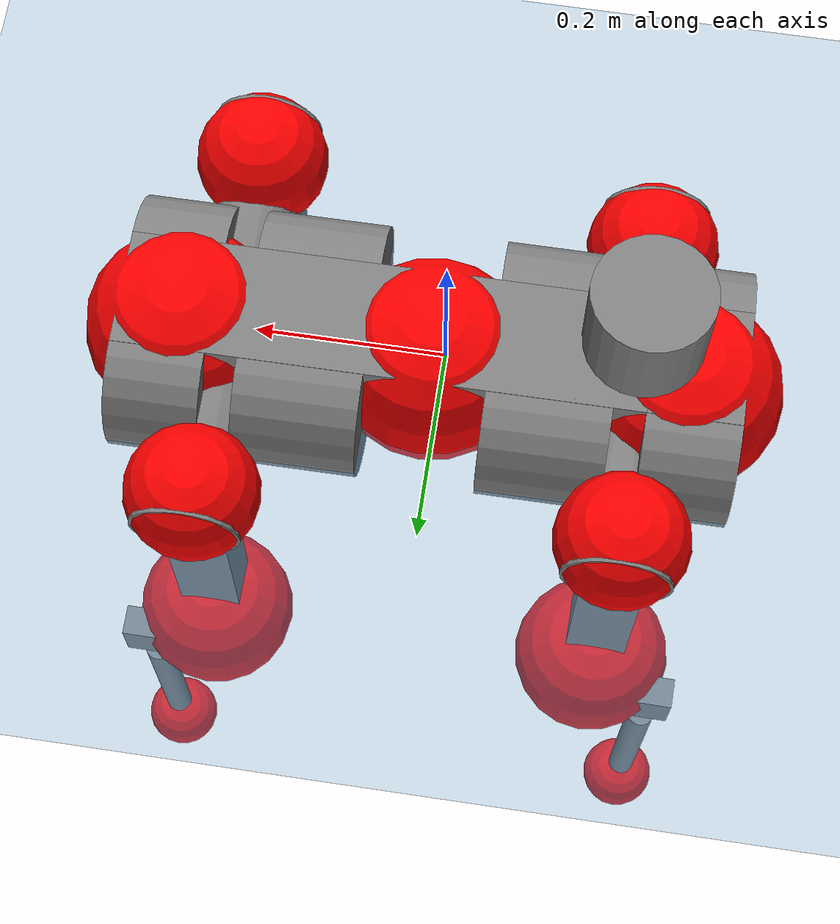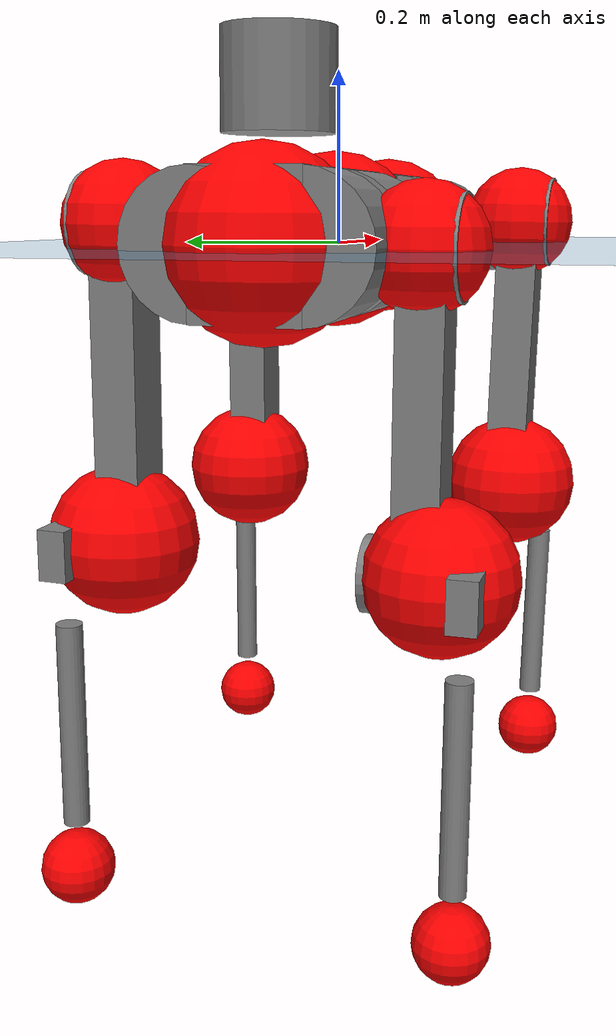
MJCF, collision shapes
<mujoco model="anymal_c">
  <compiler angle="radian" assetdir="assets" balanceinertia="true" inertiafromgeom="false"/>

  <option timestep="0.005" density="1.2" viscosity="2e-05"/>

  <size nkey="1"/>

  <visual>
    <quality shadowsize="8192"/>
    <map shadowclip="0.5"/>
  </visual>

  <default>
    <default class="/">
      <material specular="0" shininess="0.25"/>
      <geom contype="0" conaffinity="0" group="1" solref="-1000 -80"/>
      <site size="0.01 0.005 0.005" group="5"/>
      <general forcelimited="true" forcerange="-80 80" biastype="affine" gainprm="80" biasprm="0 -80 -2"/>
      <default class="anymal_c">
        <joint armature="0.01" damping="0.01" frictionloss="0.1"/>
        <default class="visual">
          <geom type="mesh" group="2"/>
          <default class="visual_zflip"/>
        </default>
        <default class="collision">
          <geom type="cylinder" group="3"/>
          <default class="foot">
            <geom size="0.03 0 0" type="sphere" condim="6" priority="1" friction="0.8 0.02 0.01" solimp="0.015 1 0.03"/>
          </default>
        </default>
      </default>
      <default class="reward_collision_sphere">
        <geom group="5" rgba="1 0 0 1"/>
      </default>
    </default>
  </default>

  <asset>
    <texture type="skybox" colorspace="auto" name="//unnamed_texture_0" builtin="gradient" rgb1="0.95 0.95 0.95" rgb2="0.95 0.95 0.95" width="100" height="600"/>
    <texture type="2d" colorspace="auto" name="texplane" builtin="checker" rgb1="0.345 0.575 0.748" rgb2="0.345 0.575 0.748" markrgb="1 1 1" width="512" height="512"/>
    <texture type="2d" colorspace="linear" name="base" file="base.png"/>
    <texture type="2d" colorspace="linear" name="top_shell" file="top_shell.png"/>
    <texture type="2d" colorspace="linear" name="bottom_shell" file="bottom_shell.png"/>
    <texture type="2d" colorspace="linear" name="remote" file="remote.png"/>
    <texture type="2d" colorspace="linear" name="hatch" file="hatch.png"/>
    <texture type="2d" colorspace="linear" name="handle" file="handle.png"/>
    <texture type="2d" colorspace="linear" name="face" file="face.png"/>
    <texture type="2d" colorspace="linear" name="battery" file="battery.png"/>
    <texture type="2d" colorspace="linear" name="lidar_cage" file="lidar_cage.png"/>
    <texture type="2d" colorspace="linear" name="depth_camera" file="depth_camera.png"/>
    <texture type="2d" colorspace="linear" name="wide_angle_camera" file="wide_angle_camera.png"/>
    <texture type="2d" colorspace="linear" name="lidar" file="lidar.png"/>
    <texture type="2d" colorspace="linear" name="drive" file="drive.png"/>
    <texture type="2d" colorspace="linear" name="hip_l" file="hip_l.png"/>
    <texture type="2d" colorspace="linear" name="shank_l" file="shank_l.png"/>
    <texture type="2d" colorspace="linear" name="foot" file="foot.png"/>
    <texture type="2d" colorspace="linear" name="thigh" file="thigh.png"/>
    <texture type="2d" colorspace="linear" name="shank_r" file="shank_r.png"/>
    <texture type="2d" colorspace="linear" name="hip_r" file="hip_r.png"/>
    <material name="MatPlane" class="/" texture="texplane" texuniform="true" texrepeat="2 2" specular="0.9" shininess="0.5"/>
    <material name="black_plastic" class="/" rgba="0.007 0.007 0.007 1"/>
    <material name="green" class="/" rgba="0.052 0.178 0.033 1"/>
    <material name="red" class="/" rgba="0.178 0.006 0.005 1"/>
    <material name="yellow" class="/" rgba="0.178 0.119 0.006 1"/>
    <material name="lwl" class="/" rgba="0.8 0.8 0.8 1"/>
    <material name="base" class="/" texture="base"/>
    <material name="top_shell" class="/" texture="top_shell"/>
    <material name="bottom_shell" class="/" texture="bottom_shell"/>
    <material name="hip_l" class="/" texture="hip_l"/>
    <material name="thigh" class="/" texture="thigh"/>
    <material name="shank_l" class="/" texture="shank_l"/>
    <material name="foot" class="/" texture="foot"/>
    <material name="hip_r" class="/" texture="hip_r"/>
    <material name="shank" class="/" texture="shank_r"/>
    <material name="hatch" class="/" texture="hatch"/>
    <material name="remote" class="/" texture="remote"/>
    <material name="handle" class="/" texture="handle"/>
    <material name="face" class="/" texture="face"/>
    <material name="depth_camera" class="/" texture="depth_camera"/>
    <material name="wide_angle_camera" class="/" texture="wide_angle_camera"/>
    <material name="battery" class="/" texture="battery"/>
    <material name="lidar_cage" class="/" texture="lidar_cage"/>
    <material name="lidar" class="/" texture="lidar"/>
    <material name="drive" class="/" texture="drive"/>
    <mesh name="base_0" class="/" file="base_0.obj"/>
    <mesh name="base_1" class="/" file="base_1.obj"/>
    <mesh name="base_2" class="/" file="base_2.obj"/>
    <mesh name="base_3" class="/" file="base_3.obj"/>
    <mesh name="base_4" class="/" file="base_4.obj"/>
    <mesh name="base_5" class="/" file="base_5.obj"/>
    <mesh name="top_shell" class="/" file="top_shell.obj"/>
    <mesh name="bottom_shell" class="/" file="bottom_shell.obj"/>
    <mesh name="remote" class="/" file="remote.obj"/>
    <mesh name="handle" class="/" file="handle.obj"/>
    <mesh name="face" class="/" file="face.obj"/>
    <mesh name="wide_angle_camera" class="/" file="wide_angle_camera.obj"/>
    <mesh name="depth_camera" class="/" file="depth_camera.obj"/>
    <mesh name="battery" class="/" file="battery.obj"/>
    <mesh name="lidar_cage" class="/" file="lidar_cage.obj"/>
    <mesh name="lidar" class="/" file="lidar.obj"/>
    <mesh name="drive" class="/" file="drive.obj"/>
    <mesh name="hip_l" class="/" file="hip_l.obj"/>
    <mesh name="thigh" class="/" file="thigh.obj"/>
    <mesh name="shank_l" class="/" file="shank_l.obj"/>
    <mesh name="foot" class="/" file="foot.obj"/>
    <mesh name="hip_r" class="/" file="hip_r.obj"/>
    <mesh name="hatch" class="/" file="hatch.obj"/>
    <mesh name="shank_r" class="/" file="shank_r.obj"/>
  </asset>

  <worldbody>
    <geom name="floor" class="/" size="100 100 0.125" type="plane" group="0" material="MatPlane"/>
    <light name="toplight_shadow" class="/" pos="0 0 5" dir="0.0990148 0.0990148 -0.990148" type="directional" ambient="0.04 0.04 0.04" diffuse="0.55 0.55 0.55" specular="0.12 0.12 0.12"/>
    <light name="toplight_fill" class="/" pos="0 0 5" dir="0.0990148 0.0990148 -0.990148" type="directional" castshadow="false" ambient="0.04 0.04 0.04" diffuse="0.3 0.3 0.3" specular="0.08 0.08 0.08"/>
    <body name="trunk" childclass="anymal_c" pos="0.0119453 0.00777195 0.00390849" quat="0.999989 0.00447619 -0.000302516 0.00126492">
      <inertial pos="0.0140624 -0.000716924 0.0609495" quat="0.500886 0.484716 0.503254 0.510782" mass="12.2361" diaginertia="0.0404915 0.221447 0.547901"/>
      <joint name="//unnamed_joint_0" type="free" armature="0" damping="0" frictionloss="0"/>
      <geom name="//unnamed_geom_1" class="visual" material="green" mesh="base_0"/>
      <geom name="//unnamed_geom_2" class="visual" material="yellow" mesh="base_1"/>
      <geom name="//unnamed_geom_3" class="visual" material="red" mesh="base_2"/>
      <geom name="//unnamed_geom_4" class="visual" material="black_plastic" mesh="base_3"/>
      <geom name="//unnamed_geom_5" class="visual" material="lwl" mesh="base_4"/>
      <geom name="//unnamed_geom_6" class="visual" material="base" mesh="base_5"/>
      <geom name="trunk_1" class="collision" size="0.254659 0.0614694 0.079032" type="box"/>
      <geom name="trunk_2" class="collision" size="0.079032 0.0636647" pos="0.125096 0.0571176 0" quat="0.707107 0 0.707107 0"/>
      <geom name="trunk_3" class="collision" size="0.079032 0.0636647" pos="-0.125096 0.0571176 0" quat="0.707107 0 0.707107 0"/>
      <geom name="trunk_4" class="collision" size="0.079032 0.0636647" pos="0.125096 -0.0571176 0" quat="0.707107 0 0.707107 0"/>
      <geom name="trunk_5" class="collision" size="0.079032 0.0636647" pos="-0.125096 -0.0571176 0" quat="0.707107 0 0.707107 0"/>
      <geom name="//unnamed_geom_12" class="visual" material="top_shell" mesh="top_shell"/>
      <geom name="//unnamed_geom_13" class="visual" material="bottom_shell" mesh="bottom_shell"/>
      <geom name="//unnamed_geom_14" class="visual" material="remote" mesh="remote"/>
      <geom name="//unnamed_geom_15" class="visual" material="handle" mesh="handle"/>
      <geom name="//unnamed_geom_16" class="visual" pos="0.2384 0 0" quat="1 0 0 0" material="face" mesh="face"/>
      <geom name="trunk_6" class="collision" size="0.0482974 0.0614694 0.079032" pos="0.270034 0 0" type="box"/>
      <geom name="//unnamed_geom_18" class="collision" size="0.079032 0.0482974" pos="0.270034 0.0571176 0" quat="0.707107 0 0.707107 0"/>
      <geom name="//unnamed_geom_19" class="collision" size="0.079032 0.0482974" pos="0.270034 -0.0571176 0" quat="0.707107 0 0.707107 0"/>
      <geom name="//unnamed_geom_20" class="visual" pos="0.265547 0 -0.0413817" quat="0.965926 0 0.258819 0" material="depth_camera" mesh="depth_camera"/>
      <geom name="//unnamed_geom_21" class="visual" pos="0.295053 0 0.018612" material="wide_angle_camera" mesh="wide_angle_camera"/>
      <geom name="//unnamed_geom_22" class="visual_zflip" pos="-0.2384 0 0" quat="0 0 0 1" material="face" mesh="face"/>
      <geom name="trunk_7" class="collision" size="0.0482974 0.0614694 0.079032" pos="-0.270034 0 0" quat="0 0 0 1" type="box"/>
      <geom name="//unnamed_geom_24" class="collision" size="0.079032 0.0482974" pos="-0.270034 -0.0571176 0" quat="0 -0.707107 0 0.707107"/>
      <geom name="//unnamed_geom_25" class="collision" size="0.079032 0.0482974" pos="-0.270034 0.0571176 0" quat="0 -0.707107 0 0.707107"/>
      <geom name="//unnamed_geom_26" class="visual" pos="-0.265547 0 -0.0413817" quat="0 -0.258819 0 0.965926" material="depth_camera" mesh="depth_camera"/>
      <geom name="//unnamed_geom_27" class="visual_zflip" pos="-0.295053 0 0.018612" quat="0 0 0 1" material="wide_angle_camera" mesh="wide_angle_camera"/>
      <geom name="//unnamed_geom_28" class="visual" material="battery" mesh="battery"/>
      <geom name="//unnamed_geom_29" class="visual" pos="0 0.0655764 0.0310396" quat="0.683013 -0.183013 0.183013 0.683013" material="depth_camera" mesh="depth_camera"/>
      <geom name="//unnamed_geom_30" class="visual" pos="0 -0.0655764 0.0310396" quat="0.683013 0.183013 0.183013 -0.683013" material="depth_camera" mesh="depth_camera"/>
      <geom name="//unnamed_geom_31" class="visual" pos="-0.209355 0 0.0913814" quat="1 0 0 0" material="lidar_cage" mesh="lidar_cage"/>
      <geom name="trunk_8" class="collision" size="0.0614694 0.052688" pos="-0.209355 0 0.165978"/>
      <geom name="//unnamed_geom_33" class="visual" pos="-0.209355 9.46091e-05 0.176795" quat="0.707107 0 0 -0.707107" material="lidar" mesh="lidar"/>
      <geom name="//unnamed_geom_34" class="visual" pos="0.172488 0.0850122 -7.3713e-09" quat="0.258819 0.965926 0 0" material="drive" mesh="drive"/>
      <geom name="//unnamed_geom_35" class="visual" pos="0.172488 -0.0850122 7.3713e-09" quat="0.258819 -0.965926 0 0" material="drive" mesh="drive"/>
      <geom name="//unnamed_geom_36" class="visual" pos="-0.172488 0.0850122 7.3713e-09" quat="0 0 0.965926 -0.258819" material="drive" mesh="drive"/>
      <geom name="//unnamed_geom_37" class="visual" pos="-0.172488 -0.0850122 -7.3713e-09" quat="0 0 -0.965926 -0.258819" material="drive" mesh="drive"/>
      <geom name="//unnamed_geom_38" class="visual" pos="0.0667176 0 0.0907598" quat="1 0 0 0" material="hatch" mesh="hatch"/>
      <geom name="//unnamed_geom_39" class="reward_collision_sphere" size="0.105376"/>
      <geom name="//unnamed_geom_40" class="reward_collision_sphere" size="0.105376" pos="0.258818 0 0"/>
      <geom name="//unnamed_geom_41" class="reward_collision_sphere" size="0.105376" pos="-0.258818 0 0"/>
      <site name="imu" pos="0.149379 -0.0109459 0.0693265" size="0.00878134"/>
      <camera name="track" pos="0 -1.63193 0" quat="0.707107 0.707107 0 0" mode="trackcom"/>
      <camera name="ego_camera" pos="0.258818 0 -0.0497314" quat="-0.5 -0.5 0.5 0.5"/>
      <body name="LF_HIP" pos="0.179189 0.0917569 -0.00394335" quat="0.261367 0.965225 -0.00133219 0.00518903">
        <inertial pos="0.0454686 -0.0068705 -0.00459528" quat="-0.130351 0.70729 -0.137336 0.681094" mass="1.64692" diaginertia="0.00032412 0.00176934 0.00789691"/>
        <joint name="LF_HAA" pos="0 0 0" axis="0.999996 0.00281202 0.000854866" stiffness="0.0153881" range="-0.734877 0.692846" armature="0.00498141" damping="0.0430758" frictionloss="0.0689459"/>
        <geom name="//unnamed_geom_42" class="visual" pos="0 -0.00043362 7.12218e-05" quat="0.258819 -0.965926 0 0" material="hip_l" mesh="hip_l"/>
        <geom name="//unnamed_geom_43" class="visual" pos="0.0344516 -0.0450679 -0.0291806" quat="0.183013 -0.683013 0.683013 0.183013" material="drive" mesh="drive"/>
        <geom name="//unnamed_geom_44" class="collision" size="0.0439067 0.0614694" pos="0.0344516 -0.00975878 -0.00858488" quat="-0.353553 -0.612372 0.612372 -0.353553"/>
        <body name="LF_THIGH" pos="0.0384524 -0.0596807 -0.0561501" quat="0.182866 -0.682737 0.683131 0.183742">
          <inertial pos="0.00583387 0.000105699 -0.316144" quat="0.993119 -0.00201415 -0.0806913 0.0848517" mass="2.17003" diaginertia="0.00192921 0.0106866 0.0132501"/>
          <joint name="LF_HFE" pos="0 0 0" axis="0.999701 0.0163356 0.0181773" range="-2.95256 2.96603" armature="0.00507929" damping="0.0670048" frictionloss="0.0648829"/>
          <geom name="//unnamed_geom_45" class="visual" pos="-0.00479124 -7.54987e-06 0" quat="0.707107 0 0 -0.707107" material="thigh" mesh="thigh"/>
          <geom name="//unnamed_geom_46" class="collision" size="0.0570787 0.0351253" pos="0.0230061 0 0" quat="0.5 0.5 -0.5 -0.5"/>
          <geom name="//unnamed_geom_47" class="collision" size="0.03293 0.026344 0.124093" pos="0.0172546 0 -0.175693" quat="0.707107 0 0 -0.707107" type="box"/>
          <geom name="//unnamed_geom_48" class="visual" pos="0.0576877 0 -0.354336" quat="1 0 0 0" material="drive" mesh="drive"/>
          <geom name="//unnamed_geom_49" class="collision" size="0.0439067 0.0614694" pos="0.0174271 0 -0.354336" quat="0.707107 0 0.707107 0"/>
          <geom name="//unnamed_geom_50" class="reward_collision_sphere" size="0.0702507" pos="0.0143788 0 0"/>
          <body name="LF_SHANK" pos="0.0556219 -0.00160458 -0.353757" quat="0.999994 0.000532937 -0.00149377 -0.00319626">
            <inertial pos="-0.00321617 -0.0555425 -0.0918506" quat="0.991777 -0.104776 -0.0314311 -0.0664209" mass="0.384044" diaginertia="0.000660687 0.00310106 0.00360893"/>
            <joint name="LF_KFE" pos="0 0 0" axis="0.999967 0.00726768 0.00371046" range="-3.14976 3.33543" armature="0.0116365" damping="0.00701314" frictionloss="0.0895321"/>
            <geom name="//unnamed_geom_51" class="visual" pos="-0.00156232 -0.00833036 0" quat="0.707107 0 0 -0.707107" material="shank_l" mesh="shank_l"/>
            <geom name="LF_kfe_act" class="collision" size="0.052688 0.0175627" pos="0.011503 0 0" quat="0.5 0.5 -0.5 -0.5"/>
            <geom name="//unnamed_geom_53" class="collision" size="0.0504918 0.029637 0.0166845" pos="0.011503 -0.0469172 0" quat="0.5 0.5 -0.5 -0.5" type="box"/>
            <geom name="//unnamed_geom_54" class="visual" pos="0.00750611 -0.0744487 -0.420193" quat="0.382683 0 0 -0.92388" material="foot" mesh="foot"/>
            <geom name="LF_calf" class="collision" size="0.0153673 0.124038" pos="0.00750573 -0.0717641 -0.210096" quat="0.707107 0 0 -0.707107"/>
            <geom name="LF_foot" class="foot" size="0.024693" pos="0.00750573 -0.0717641 -0.392219" quat="0.707107 0 0 -0.707107"/>
            <geom name="//unnamed_geom_57" class="reward_collision_sphere" size="0.0878134" pos="-0.0287576 0 0"/>
            <geom name="//unnamed_geom_58" class="reward_collision_sphere" size="0.0439067" pos="0.00750573 -0.0717641 -0.392219"/>
            <site name="LF_foot" class="foot" pos="0.00750573 -0.0717641 -0.392219" quat="0.707107 0 0 -0.707107" size="0.00878134"/>
          </body>
        </body>
      </body>
      <body name="RF_HIP" pos="0.175067 -0.0947235 -0.000733428" quat="0.260195 -0.965554 0.000716125 0.0019006">
        <inertial pos="0.0236391 0.0102021 -0.0109377" quat="0.132775 0.680023 0.123842 0.710354" mass="1.40425" diaginertia="0.000335919 0.00163984 0.00959656"/>
        <joint name="RF_HAA" pos="0 0 0" axis="0.999972 -0.00529286 -0.0052962" stiffness="0.00559209" range="-0.611992 0.749468" armature="0.0142316" damping="0.00864138" frictionloss="0.0344862"/>
        <geom name="//unnamed_geom_59" class="visual" pos="0 0.000433617 7.12216e-05" quat="0.258819 0.965926 0 0" material="hip_r" mesh="hip_r"/>
        <geom name="//unnamed_geom_60" class="visual" pos="0.0344516 0.0450679 -0.0291806" quat="0.183013 0.683013 0.683013 -0.183013" material="drive" mesh="drive"/>
        <geom name="//unnamed_geom_61" class="collision" size="0.0439067 0.0614694" pos="0.0344516 0.00975878 -0.00858488" quat="-0.353553 0.612372 0.612372 0.353553"/>
        <body name="RF_THIGH" pos="0.0356486 0.0616015 -0.0626098" quat="0.179749 0.682243 0.68568 -0.1791">
          <inertial pos="0.0257891 0.0127062 -0.302963" quat="0.992671 -0.00476183 -0.0799365 0.0905113" mass="2.52426" diaginertia="0.00202416 0.011924 0.0144761"/>
          <joint name="RF_HFE" pos="0 0 0" axis="0.999996 0.00231391 -0.00179599" stiffness="0.00801433" range="-3.0863 3.21394" armature="0.00911849" damping="0.00652493" frictionloss="0.0686718"/>
          <geom name="//unnamed_geom_62" class="visual" pos="-0.00479124 -7.54987e-06 0" quat="0.707107 0 0 -0.707107" material="thigh" mesh="thigh"/>
          <geom name="//unnamed_geom_63" class="collision" size="0.0570787 0.0351253" pos="0.0230061 0 0" quat="0.5 0.5 0.5 0.5"/>
          <geom name="//unnamed_geom_64" class="collision" size="0.03293 0.026344 0.124093" pos="0.0172546 0 -0.175693" quat="0.707107 0 0 0.707107" type="box"/>
          <geom name="//unnamed_geom_65" class="visual" pos="0.0576877 0 -0.354336" quat="1 0 0 0" material="drive" mesh="drive"/>
          <geom name="//unnamed_geom_66" class="collision" size="0.0439067 0.0614694" pos="0.0174271 0 -0.354336" quat="0.707107 0 0.707107 0"/>
          <geom name="//unnamed_geom_67" class="reward_collision_sphere" size="0.0702507" pos="0.0143788 0 0"/>
          <body name="RF_SHANK" pos="0.0502319 0.00170698 -0.353462" quat="1 0.000297039 -0.000756072 -3.75149e-05">
            <inertial pos="-0.00241182 0.048979 -0.0978188" quat="0.993017 0.114869 -0.00238578 0.0267792" mass="0.341039" diaginertia="0.000493229 0.00324082 0.00296598"/>
            <joint name="RF_KFE" pos="0 0 0" axis="0.99897 -0.0436677 0.0123398" stiffness="0.0312293" range="-3.08632 3.13946" armature="0.00906685" damping="0" frictionloss="0.0787726"/>
            <geom name="//unnamed_geom_68" class="visual" pos="-0.00156231 0.00833034 0" quat="0.707107 0 0 0.707107" material="shank" mesh="shank_r"/>
            <geom name="RF_kfe_act" class="collision" size="0.052688 0.0175627" pos="0.011503 0 0" quat="0.5 0.5 0.5 0.5"/>
            <geom name="//unnamed_geom_70" class="collision" size="0.0504918 0.029637 0.0166845" pos="0.011503 0.0469172 0" quat="0.5 0.5 0.5 0.5" type="box"/>
            <geom name="//unnamed_geom_71" class="visual" pos="0.00750535 0.0744487 -0.420193" quat="0.382683 0 0 0.92388" material="foot" mesh="foot"/>
            <geom name="RF_calf" class="collision" size="0.0153673 0.124038" pos="0.00750573 0.0717641 -0.210096" quat="0.707107 0 0 0.707107"/>
            <geom name="RF_foot" class="foot" size="0.031421" pos="0.00750573 0.0717641 -0.392219" quat="0.707107 0 0 0.707107"/>
            <geom name="//unnamed_geom_74" class="reward_collision_sphere" size="0.0878134" pos="-0.0287576 0 0"/>
            <geom name="//unnamed_geom_75" class="reward_collision_sphere" size="0.0439067" pos="0.00750573 0.0717641 -0.392219"/>
            <site name="RF_foot" class="foot" pos="0.00750573 0.0717641 -0.392219" quat="0.707107 0 0 0.707107" size="0.00878134"/>
          </body>
        </body>
      </body>
      <body name="LH_HIP" pos="-0.171413 0.0840378 -0.00626855" quat="-0.00234832 0.00632484 0.966195 -0.257722">
        <inertial pos="0.0206604 0.0138894 -0.0100646" quat="0.136053 0.680438 0.128331 0.708537" mass="1.86519" diaginertia="0.000371085 0.00161539 0.0101555"/>
        <joint name="LH_HAA" pos="0 0 0" axis="0.999966 -0.00743594 0.00360775" range="-0.469904 0.715785" armature="0.00857366" damping="0.0115138" frictionloss="0.0710818"/>
        <geom name="//unnamed_geom_76" class="visual" pos="0 0.000433617 7.12216e-05" quat="-0.258819 -0.965926 0 0" material="hip_r" mesh="hip_r"/>
        <geom name="//unnamed_geom_77" class="visual" pos="0.0344516 0.0450679 -0.0291806" quat="0.183013 0.683013 0.683013 -0.183013" material="drive" mesh="drive"/>
        <geom name="//unnamed_geom_78" class="collision" size="0.0439067 0.0614694" pos="0.0344516 0.00975878 -0.00858488" quat="-0.353553 0.612372 0.612372 0.353553"/>
        <body name="LH_THIGH" pos="0.0457681 0.0549173 -0.0602922" quat="0.186081 0.679218 0.686043 -0.182707">
          <inertial pos="0.0165071 0.00109027 -0.304394" quat="0.99398 -0.00654771 -0.101256 0.0413196" mass="2.34479" diaginertia="0.00185363 0.012081 0.0120023"/>
          <joint name="LH_HFE" pos="0 0 0" axis="0.999849 0.0125859 -0.0119482" stiffness="0.00515945" range="-3.13193 3.10968" armature="0.0116396" damping="0.0672194" frictionloss="0.102688"/>
          <geom name="//unnamed_geom_79" class="visual" pos="-0.00479124 -7.54987e-06 0" quat="0.707107 0 0 -0.707107" material="thigh" mesh="thigh"/>
          <geom name="//unnamed_geom_80" class="collision" size="0.0570787 0.0351253" pos="0.0230061 0 0" quat="0.5 0.5 -0.5 -0.5"/>
          <geom name="//unnamed_geom_81" class="collision" size="0.03293 0.026344 0.124093" pos="0.0172546 0 -0.175693" quat="0.707107 0 0 -0.707107" type="box"/>
          <geom name="//unnamed_geom_82" class="visual" pos="0.0576877 0 -0.354336" quat="1 0 0 0" material="drive" mesh="drive"/>
          <geom name="//unnamed_geom_83" class="collision" size="0.0439067 0.0614694" pos="0.0174271 0 -0.354336" quat="0.707107 0 0.707107 0"/>
          <geom name="//unnamed_geom_84" class="reward_collision_sphere" size="0.0702507" pos="0.0143788 0 0"/>
          <body name="LH_SHANK" pos="0.0547913 -0.000782042 -0.359588" quat="1 -0.000342489 8.21085e-05 -7.66021e-05">
            <inertial pos="0.0037841 0.049053 -0.10646" quat="0.992858 0.116715 -0.00526381 0.0241227" mass="0.398473" diaginertia="0.000640201 0.00344989 0.0033493"/>
            <joint name="LH_KFE" pos="0 0 0" axis="0.99996 -0.00895826 0.000483451" range="-3.09846 3.14273" armature="0.0112338" damping="0.0580645" frictionloss="0.0821061"/>
            <geom name="//unnamed_geom_85" class="visual" pos="-0.00156231 0.00833034 0" quat="-0.707107 0 0 -0.707107" material="shank" mesh="shank_r"/>
            <geom name="LH_kfe_act" class="collision" size="0.052688 0.0175627" pos="0.011503 0 0" quat="0.5 0.5 -0.5 -0.5"/>
            <geom name="//unnamed_geom_87" class="collision" size="0.0504918 0.029637 0.0166845" pos="0.011503 0.0469172 0" quat="0.5 0.5 -0.5 -0.5" type="box"/>
            <geom name="//unnamed_geom_88" class="visual" pos="0.00750535 0.0744487 -0.420193" quat="-0.382683 0 0 -0.92388" material="foot" mesh="foot"/>
            <geom name="LH_calf" class="collision" size="0.0153673 0.124038" pos="0.00750573 0.0717641 -0.210096" quat="0.707107 0 0 -0.707107"/>
            <geom name="LH_foot" class="foot" size="0.0188231" pos="0.00750573 0.0717641 -0.392219" quat="0.707107 0 0 -0.707107"/>
            <geom name="//unnamed_geom_91" class="reward_collision_sphere" size="0.0878134" pos="-0.0287576 0 0"/>
            <geom name="//unnamed_geom_92" class="reward_collision_sphere" size="0.0439067" pos="0.00750573 0.0717641 -0.392219"/>
            <site name="LH_foot" class="foot" pos="0.00750573 0.0717641 -0.392219" quat="0.707107 0 0 -0.707107" size="0.00878134"/>
          </body>
        </body>
      </body>
      <body name="RH_HIP" pos="-0.176274 -0.0733538 -0.00907908" quat="0.00161193 0.00356162 -0.966144 -0.257975">
        <inertial pos="0.0322466 -0.0215433 -0.0112115" quat="-0.119293 0.687071 -0.182169 0.693194" mass="1.849" diaginertia="0.000334021 0.0015979 0.0100896"/>
        <joint name="RH_HAA" pos="0 0 0" axis="0.999987 0.00123916 0.00487622" range="-0.737659 0.526396" armature="0.00305133" damping="0" frictionloss="0.132713"/>
        <geom name="//unnamed_geom_93" class="visual" pos="0 -0.00043362 7.12218e-05" quat="-0.258819 0.965926 0 0" material="hip_l" mesh="hip_l"/>
        <geom name="//unnamed_geom_94" class="visual" pos="0.0344516 -0.0450679 -0.0291806" quat="-0.183013 0.683013 -0.683013 -0.183013" material="drive" mesh="drive"/>
        <geom name="//unnamed_geom_95" class="collision" size="0.0439067 0.0614694" pos="0.0344516 -0.00975878 -0.00858488" quat="0.353553 0.612372 -0.612372 0.353553"/>
        <body name="RH_THIGH" pos="0.0366977 -0.0583555 -0.0426202" quat="-0.183737 0.682727 -0.683672 -0.180881">
          <inertial pos="0.0181582 0.00510538 -0.304331" quat="0.993098 -0.0101978 -0.0774375 0.0874978" mass="2.31223" diaginertia="0.00209641 0.0111089 0.0147737"/>
          <joint name="RH_HFE" pos="0 0 0" axis="0.999983 0.00315535 -0.00484848" stiffness="0.0372056" range="-2.92076 3.00845" armature="0.0064106" damping="0.0123046" frictionloss="0.0976738"/>
          <geom name="//unnamed_geom_96" class="visual" pos="-0.00479124 -7.54987e-06 0" quat="0.707107 0 0 -0.707107" material="thigh" mesh="thigh"/>
          <geom name="//unnamed_geom_97" class="collision" size="0.0570787 0.0351253" pos="0.0230061 0 0" quat="0.5 0.5 0.5 0.5"/>
          <geom name="//unnamed_geom_98" class="collision" size="0.03293 0.026344 0.124093" pos="0.0172546 0 -0.175693" quat="0.707107 0 0 0.707107" type="box"/>
          <geom name="//unnamed_geom_99" class="visual" pos="0.0576877 0 -0.354336" quat="1 0 0 0" material="drive" mesh="drive"/>
          <geom name="//unnamed_geom_100" class="collision" size="0.0439067 0.0614694" pos="0.0174271 0 -0.354336" quat="0.707107 0 0.707107 0"/>
          <geom name="//unnamed_geom_101" class="reward_collision_sphere" size="0.0702507" pos="0.0143788 0 0"/>
          <body name="RH_SHANK" pos="0.0717535 -0.00837193 -0.349467" quat="1 0.000450172 -3.97743e-06 0.000192465">
            <inertial pos="-0.0101269 -0.0492953 -0.106191" quat="0.993511 -0.110243 0.0172968 -0.021978" mass="0.385949" diaginertia="0.000683864 0.00424709 0.00348491"/>
            <joint name="RH_KFE" pos="0 0 0" axis="0.999979 -0.00437752 0.00475064" stiffness="0.00337735" range="-3.30252 2.86861" armature="0.0131041" damping="0.00542245" frictionloss="0.0771856"/>
            <geom name="//unnamed_geom_102" class="visual" pos="-0.00156232 -0.00833036 0" quat="0.707107 0 0 -0.707107" material="shank_l" mesh="shank_l"/>
            <geom name="RH_kfe_act" class="collision" size="0.052688 0.0175627" pos="0.011503 0 0" quat="0.5 0.5 0.5 0.5"/>
            <geom name="//unnamed_geom_104" class="collision" size="0.0504918 0.029637 0.0166845" pos="0.011503 -0.0469172 0" quat="0.5 0.5 0.5 0.5" type="box"/>
            <geom name="//unnamed_geom_105" class="visual" pos="0.00750611 -0.0744487 -0.420193" quat="0.382683 0 0 -0.92388" material="foot" mesh="foot"/>
            <geom name="RH_calf" class="collision" size="0.0153673 0.124038" pos="0.00750573 -0.0717641 -0.210096" quat="0.707107 0 0 0.707107"/>
            <geom name="RH_foot" class="foot" size="0.0297093" pos="0.00750573 -0.0717641 -0.392219" quat="0.707107 0 0 0.707107"/>
            <geom name="//unnamed_geom_108" class="reward_collision_sphere" size="0.0878134" pos="-0.0287576 0 0"/>
            <geom name="//unnamed_geom_109" class="reward_collision_sphere" size="0.0439067" pos="0.00750573 -0.0717641 -0.392219"/>
            <site name="RH_foot" class="foot" pos="0.00750573 -0.0717641 -0.392219" quat="0.707107 0 0 0.707107" size="0.00878134"/>
          </body>
        </body>
      </body>
    </body>
  </worldbody>

  <contact>
    <pair class="/" geom1="floor" geom2="LF_foot" name="//unnamed_contact_0"/>
    <pair class="/" geom1="floor" geom2="RF_foot" name="//unnamed_contact_1"/>
    <pair class="/" geom1="floor" geom2="LH_foot" name="//unnamed_contact_2"/>
    <pair class="/" geom1="floor" geom2="RH_foot" name="//unnamed_contact_3"/>
  </contact>

  <actuator>
    <general name="LF_HAA" class="/" joint="LF_HAA" forcerange="-69.342 69.342" gainprm="67.3694" biasprm="0 -67.3694 -1.88486"/>
    <general name="LF_HFE" class="/" joint="LF_HFE" forcerange="-84.9079 84.9079" gainprm="67.3694" biasprm="0 -67.3694 -1.88486"/>
    <general name="LF_KFE" class="/" joint="LF_KFE" forcerange="-73.3339 73.3339" gainprm="67.3694" biasprm="0 -67.3694 -1.88486"/>
    <general name="RF_HAA" class="/" joint="RF_HAA" forcerange="-36.0928 36.0928" gainprm="67.3694" biasprm="0 -67.3694 -1.88486"/>
    <general name="RF_HFE" class="/" joint="RF_HFE" forcerange="-72.6965 72.6965" gainprm="67.3694" biasprm="0 -67.3694 -1.88486"/>
    <general name="RF_KFE" class="/" joint="RF_KFE" forcerange="-92.3911 92.3911" gainprm="67.3694" biasprm="0 -67.3694 -1.88486"/>
    <general name="LH_HAA" class="/" joint="LH_HAA" forcerange="-70.7466 70.7466" gainprm="67.3694" biasprm="0 -67.3694 -1.88486"/>
    <general name="LH_HFE" class="/" joint="LH_HFE" forcerange="-70.9933 70.9933" gainprm="67.3694" biasprm="0 -67.3694 -1.88486"/>
    <general name="LH_KFE" class="/" joint="LH_KFE" forcerange="-73.3117 73.3117" gainprm="67.3694" biasprm="0 -67.3694 -1.88486"/>
    <general name="RH_HAA" class="/" joint="RH_HAA" forcerange="-70.1454 70.1454" gainprm="67.3694" biasprm="0 -67.3694 -1.88486"/>
    <general name="RH_HFE" class="/" joint="RH_HFE" forcerange="-78.1109 78.1109" gainprm="67.3694" biasprm="0 -67.3694 -1.88486"/>
    <general name="RH_KFE" class="/" joint="RH_KFE" forcerange="-41.4074 41.4074" gainprm="67.3694" biasprm="0 -67.3694 -1.88486"/>
  </actuator>

  <sensor>
    <gyro site="imu" name="imu_angular_velocity"/>
    <velocimeter site="imu" name="imu_linear_velocity"/>
    <framelinvel objtype="site" objname="LF_foot" name="LF_foot_global_linear_velocity"/>
    <framelinvel objtype="site" objname="RF_foot" name="RF_foot_global_linear_velocity"/>
    <framelinvel objtype="site" objname="LH_foot" name="LH_foot_global_linear_velocity"/>
    <framelinvel objtype="site" objname="RH_foot" name="RH_foot_global_linear_velocity"/>
  </sensor>

  <keyframe>
    <key name="home" qpos="0 0 0.55 1 0 0 0 0 0.4 -0.8 0 -0.4 0.8 0 -0.4 0.8 0 0.4 -0.8"/>
  </keyframe>
</mujoco>
